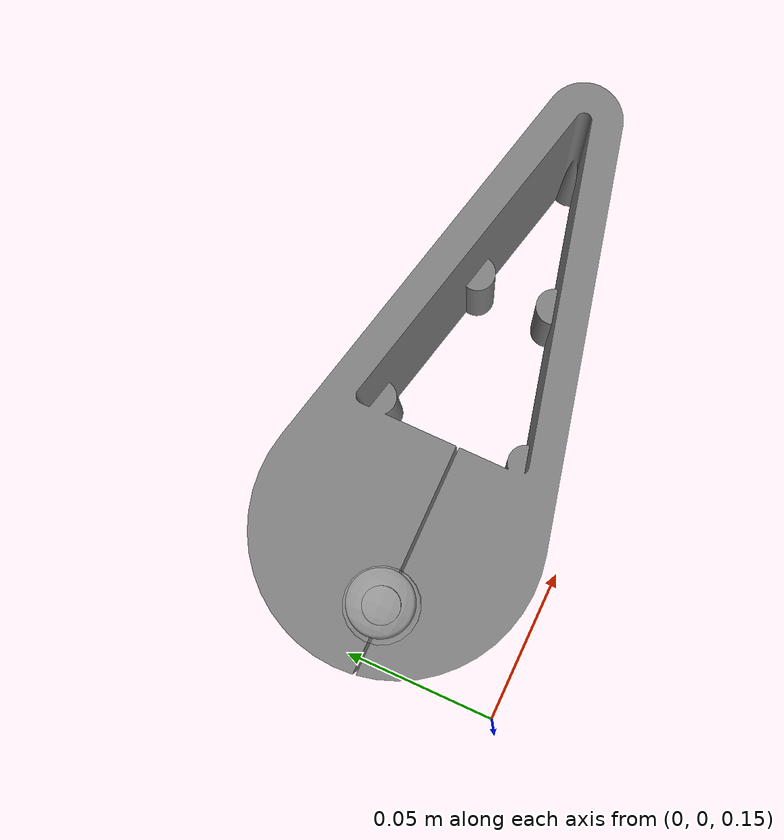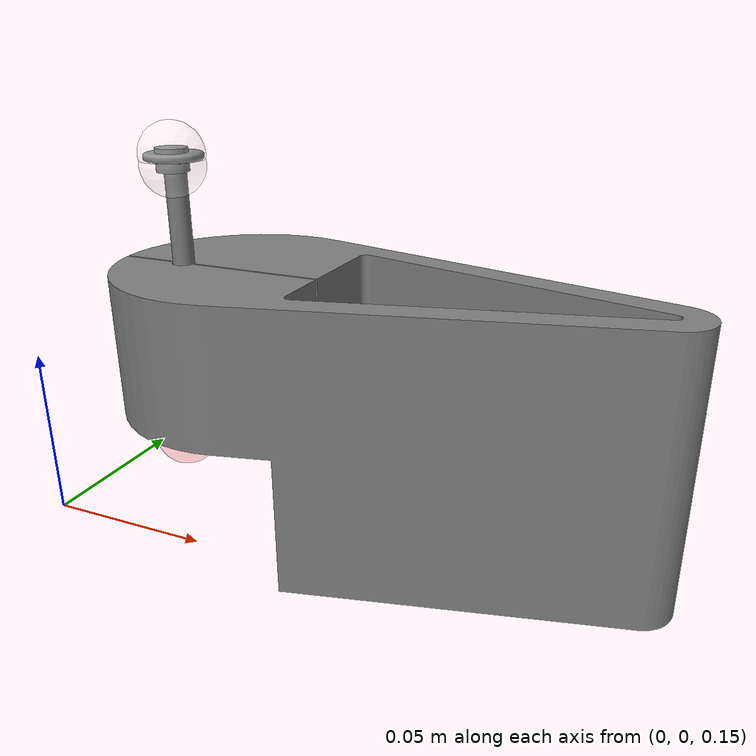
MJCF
<mujoco model="nail">
    <compiler angle="radian" meshdir="../meshes/" autolimits="true"/>
    <option solver="CG" tolerance="1e-6" impratio="10"/>
    <size nconmax="500" njmax="5000" nstack="5000000"/>

    <asset>
        <mesh name="nail_head" file="nail_head.STL" scale="0.0045 0.0045 0.0045"/>
        <mesh name="nail_down" file="nail_down.STL" scale="0.0045 0.0045 0.0045"/>
        <mesh name="nail_tool" file="hammertool.STL" scale="0.0045 0.0045 0.0045"/>
    </asset>

    <default>
      <default class="nail">
        <general biastype="affine"/>
        <default class="nailvisual">
            <geom type="mesh" solimp="0.95 0.99 0.001" solref="0.004 1" priority="1" contype="0" conaffinity="0" group="2"/>
        </default>
        <default class="nailcollision">
            <geom type="mesh" group="3"/>
        </default>
      </default>

    </default>

    <worldbody>
    <site name="nail_head_pos_world" pos="0.028 0.029 0.168" size="0.01 0.01 0.01" type="sphere" rgba="1 0 0 0.2"/>
        <body name="nail" pos="0 0 0" quat="0.5 0.5 0.5 0.5">
            <inertial pos="0.035 -0.03 0.075" quat="1 0 0 0" mass="20" diaginertia="0.03 0.03 0.03" />
            <geom class="nailvisual" friction="0.7" mesh="nail_head" />
            <geom class="nailcollision" mesh="nail_head" />
            <site name="nail_head_pos" pos="0.042 0.253 0.022" size="0.01 0.01 0.01" type="sphere" rgba="1 1 1 0.1"/>
            <site name="nail_root_pos" pos="0.042 0.25 0.022" size="0.01 0.01 0.01" type="sphere" rgba="1 1 1 0.1"/>
            <geom class="nailvisual" friction="0.7" mesh="nail_down" />
            <geom class="nailcollision" mesh="nail_down" />
            <geom class="nailvisual" friction="0.7" mesh="nail_tool" />
            <geom class="nailcollision" mesh="nail_tool" />
            <body name="NailHead" pos="0.042 0.253 0.022" quat="0.5 0.5 0.5 -0.5">
                <geom type="cylinder" size="0.005 0.002 0"/>
            </body>
            <body name="NailRoot" pos="0.042 0.25 0.022" quat="0.5 0.5 0.5 -0.5">
                <geom type="cylinder" size="0.005 0.002 0"/>
            </body>
        </body>
    </worldbody>

</mujoco>
